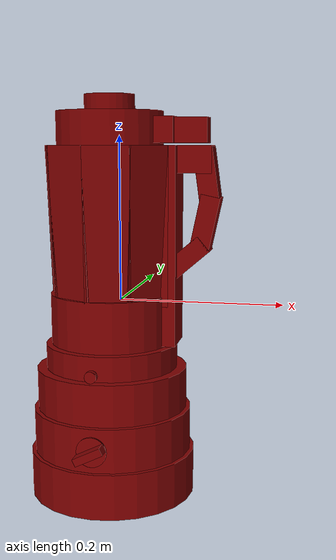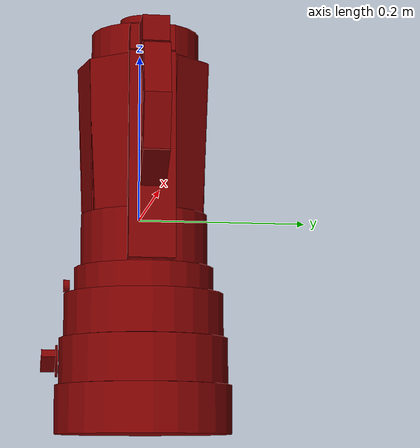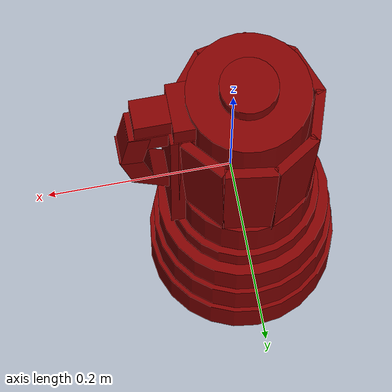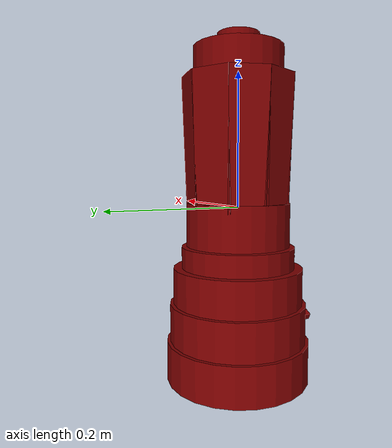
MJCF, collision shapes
<?xml version='1.0' encoding='UTF-8'?>
<mujoco model="model">
  <option timestep="0.002" gravity="0.0 0.0 -9.81"/>
  <compiler angle="radian"/>
  <asset>
    <mesh file="visuals/Blade001.obj" name="Blade001_vis"/>
    <mesh file="visuals/Body001.obj" name="Body001_vis"/>
    <mesh file="visuals/Button001.obj" name="Button001_vis"/>
    <mesh file="visuals/Jug001.obj" name="Jug001_vis"/>
    <mesh file="visuals/Jug001_Clear.obj" name="Jug001_Clear_vis"/>
    <mesh file="visuals/Knob001.obj" name="Knob001_vis"/>
    <mesh file="visuals/Lid001.obj" name="Lid001_vis"/>
    <texture file="visuals/T_BC001.png" name="Body001_material" type="2d"/>
    <material name="Body001_material" rgba="1 1 1 1.0" texture="Body001_material" shininess="0.1" specular="1"/>
    <texture file="visuals/T_BC001.png" name="Button001_material" type="2d"/>
    <material name="Button001_material" rgba="1 1 1 1.0" texture="Button001_material" shininess="0.4472135901451111" specular="0.3103448502657381"/>
    <texture file="visuals/T_BC001.png" name="Jug001_material" type="2d"/>
    <material name="Jug001_material" rgba="1 1 1 1.0" texture="Jug001_material" shininess="0.4472135901451111" specular="0.3103448502657381"/>
    <texture file="visuals/T_BC001.png" name="Blade001_material" type="2d"/>
    <material name="Blade001_material" rgba="1 1 1 1.0" texture="Blade001_material" shininess="0.4472135901451111" specular="0.3103448502657381"/>
    <texture file="visuals/T_BC001.png" name="Jug001_Clear_material" type="2d"/>
    <material name="Jug001_Clear_material" rgba="1 1 1 0.800000011920929" texture="Jug001_Clear_material" shininess="0.4472135901451111" specular="0.3103448502657381"/>
    <texture file="visuals/T_BC001.png" name="Lid001_material" type="2d"/>
    <material name="Lid001_material" rgba="1 1 1 1.0" texture="Lid001_material" shininess="0.4472135901451111" specular="0.3103448502657381"/>
    <texture file="visuals/T_BC001.png" name="Knob001_material" type="2d"/>
    <material name="Knob001_material" rgba="1 1 1 1.0" texture="Knob001_material" shininess="0.4472135901451111" specular="0.3103448502657381"/>
  </asset>
  <default>
    <default class="visual">
      <geom conaffinity="0" contype="0" group="1" type="mesh"/>
    </default>
    <default class="collision">
      <geom group="0" rgba="0.5 0 0 0.5"/>
    </default>
    <default class="spawn">
      <geom group="0" rgba="1 1 1 0.5" contype="0" conaffinity="0"/>
      <site group="0" rgba="1 1 1 0.5"/>
    </default>
    <default class="region">
      <geom group="1" conaffinity="0" contype="0" rgba="0 1 0 0"/>
    </default>
  </default>
  <worldbody>
    <body>
      <body name="object">
        <geom mesh="Body001_vis" type="mesh" solimp="0.998 0.998 0.001" solref="0.001 1" friction="0.95 0.3 0.1" class="visual" material="Body001_material"/>
        <geom class="collision" type="cylinder" pos="-0.01387144 0.00759112 -0.22227697" size="0.10469318181276321 0.028516290709376335" quat="1.0 0.0 0.0 0.0"/>
        <geom class="collision" type="cylinder" pos="-0.01387144 0.00759112 -0.16607638" size="0.10001954436302185 0.02724328637123108" quat="1.0 0.0 0.0 0.0"/>
        <geom class="collision" type="cylinder" pos="-0.01387144 0.00759112 -0.11230748" size="0.09488319605588913 0.02584424987435341" quat="1.0 0.0 0.0 0.0"/>
        <geom class="collision" type="cylinder" pos="-0.01387144 0.00759112 -0.07100878" size="0.08281132578849792 0.015388729982078075" quat="1.0 0.0 0.0 0.0"/>
        <body name="power_button">
          <joint axis="0.0 1.0 0.0" pos="-0.01595779 -0.08291703 -0.07724272" limited="true" name="power_button_joint" range="0.0 0.005" type="slide" damping="1" frictionloss="1" armature=".01" stiffness="0.05"/>
          <geom mesh="Button001_vis" type="mesh" solimp="0.998 0.998 0.001" solref="0.001 1" friction="0.95 0.3 0.1" class="visual" material="Button001_material"/>
          <geom class="collision" type="cylinder" pos="-0.01595779 -0.08434111 -0.07724272" size="0.007227575872093439 0.00347500410862267" quat="0.7071068286895752 0.7071067690849304 0.0 0.0"/>
        </body>
        <body name="pitcher">
          <joint axis="0.0 0.0 1.0" pos="0.01402409 0.00780655 0.06737188" limited="true" name="pitcher_joint" range="0.0 0.1" type="slide" damping="1" frictionloss="1" armature=".01" stiffness="0.05"/>
          <geom mesh="Jug001_vis" type="mesh" solimp="0.998 0.998 0.001" solref="0.001 1" friction="0.95 0.3 0.1" class="visual" material="Jug001_material"/>
          <geom class="collision" type="cylinder" pos="-0.01387144 0.00759112 -0.02343743" size="0.0755901038646698 0.031190989539027214" quat="1.0 0.0 0.0 0.0"/>
          <geom class="collision" type="box" pos="0.06034970 0.00758336 0.06784143" size="0.011583236046135426 0.027263129130005836 0.12090808898210526" quat="1.0 0.0 0.0 0.0"/>
          <geom name="pitcher_handle_0" class="collision" type="box" pos="0.09159835 0.00748012 0.17227817" size="0.021328119561076164 0.015841878950595856 0.01625138334929943" quat="1.0 0.0 0.0 0.0"/>
          <geom name="pitcher_handle_1" class="collision" type="box" pos="0.10630482 0.00791430 0.15362938" size="0.03252037614583969 0.01542231347411871 0.011712320148944855" quat="0.7547217607498169 0.0 0.6560450196266174 0.0"/>
          <geom name="pitcher_handle_2" class="collision" type="box" pos="0.10537517 0.00791430 0.09766448" size="0.03252037614583969 0.01542231161147356 0.011712320148944855" quat="0.6293348073959351 0.0 0.7771342992782593 0.0"/>
          <geom name="pitcher_handle_3" class="collision" type="box" pos="0.08100685 0.00791430 0.05260452" size="0.030332840979099274 0.01542231161147356 0.01171231921762228" quat="0.34662744402885437 0.0 0.93800288438797 0.0"/>
          <geom class="collision" type="box" pos="0.05442135 0.00758336 0.09247573" size="0.008866118267178535 0.027263129130005836 0.0962737575173378" quat="1.0 0.0 0.0 0.0"/>
          <geom class="collision" type="box" pos="0.03891332 -0.03551471 0.09247573" size="0.005154433660209179 0.027263129130005836 0.09614638984203339" quat="0.9419527649879456 0.006479029078036547 0.018207471817731857 -0.33518874645233154"/>
          <geom class="collision" type="box" pos="-0.04634138 -0.05228703 0.09247573" size="0.005154434125870466 0.027263129130005836 0.09614638984203339" quat="0.5137460827827454 0.016579383984208107 0.009930452331900597 -0.8577246069908142"/>
          <geom class="collision" type="box" pos="-0.00107414 -0.05927414 0.09247573" size="0.005154433660209179 0.027263129130005836 0.09614638984203339" quat="0.771568238735199 0.012290717102587223 0.01491402555257082 -0.6358529329299927"/>
          <geom class="collision" type="box" pos="-0.05083842 0.06528205 0.09247573" size="0.005154433660209179 0.027263129130005836 0.09614638984203339" quat="0.4774850010871887 -0.016979556530714035 0.00922954361885786 0.8784273266792297"/>
          <geom class="collision" type="box" pos="-0.00432211 0.07546330 0.09247573" size="0.005154433660209179 0.027263129130005836 0.09614638984203339" quat="0.7537038326263428 -0.01269812323153019 0.014568712562322617 0.6569300293922424"/>
          <geom class="collision" type="box" pos="-0.07905889 0.02830759 0.09247573" size="0.005154433660209179 0.027263129130005836 0.09614638984203339" quat="0.14990121126174927 -0.019107436761260033 0.002897514495998621 0.9885120987892151"/>
          <geom class="collision" type="box" pos="-0.07734878 -0.01746379 0.09247573" size="0.005154433660209179 0.027263129130005836 0.09614638984203339" quat="0.1901738941669464 0.018973061814904213 0.0036759646609425545 -0.9815601706504822"/>
          <geom class="collision" type="box" pos="0.03788485 0.05238785 0.09247573" size="0.005154434125870466 0.027263129130005836 0.09614638984203339" quat="0.9367375373840332 -0.006755633745342493 0.018106667324900627 0.3494986593723297"/>
          <body name="blade">
            <joint axis="0.0 0.0 1.0" pos="-0.01390748 0.00780855 0.02079049" limited="false" name="blade_joint" range="0 360" type="hinge" damping="1" frictionloss="1" armature=".01" stiffness="0.05"/>
            <geom mesh="Blade001_vis" type="mesh" solimp="0.998 0.998 0.001" solref="0.001 1" friction="0.95 0.3 0.1" class="visual" material="Blade001_material"/>
            <geom class="collision" type="box" pos="-0.01365844 0.00634319 0.01533413" size="0.014491913840174675 0.017638348042964935 0.0007777351420372725" quat="1.0 0.0 0.0 0.0"/>
            <geom class="collision" type="box" pos="-0.01384328 0.03973202 0.01533413" size="0.0050698015838861465 0.016161534935235977 0.0007777351420372725" quat="1.0 0.0 0.0 0.0"/>
            <geom class="collision" type="box" pos="-0.01384328 -0.02448858 0.01533413" size="0.0050698015838861465 0.016161534935235977 0.0007777351420372725" quat="1.0 0.0 0.0 0.0"/>
            <geom class="collision" type="box" pos="-0.04553313 0.00760271 0.02032603" size="0.0050698015838861465 0.01778339222073555 0.0007777351420372725" quat="0.6976118087768555 -0.11548939347267151 0.1154894009232521 -0.6976117491722107"/>
            <geom class="collision" type="box" pos="0.01769215 0.00760271 0.02042771" size="0.0050698015838861465 0.01746790111064911 0.0007777351420372725" quat="0.6976118087768555 -0.11548939347267151 -0.1154894009232521 0.6976117491722107"/>
          </body>
          <body name="pitcher_main">
            <geom class="region" name="reg_int" type="cylinder" pos="-0.014116954999999999 0.007731690000000001 0.09428043500000001" size="0.05 0.064287145"/>
            <geom mesh="Jug001_Clear_vis" type="mesh" solimp="0.998 0.998 0.001" solref="0.001 1" friction="0.95 0.3 0.1" class="visual" material="Jug001_Clear_material"/>
            <geom class="collision" type="box" pos="0.05442135 0.00758336 0.09247573" size="0.008866118267178535 0.027263129130005836 0.0962737575173378" quat="1.0 0.0 0.0 0.0"/>
            <geom class="collision" type="box" pos="0.03891332 -0.03551471 0.09247573" size="0.005154433660209179 0.027263129130005836 0.09614638984203339" quat="0.9419527649879456 0.006479029078036547 0.018207471817731857 -0.33518874645233154"/>
            <geom class="collision" type="box" pos="-0.04634138 -0.05228703 0.09247573" size="0.005154434125870466 0.027263129130005836 0.09614638984203339" quat="0.5137460827827454 0.016579383984208107 0.009930452331900597 -0.8577246069908142"/>
            <geom class="collision" type="box" pos="-0.00107414 -0.05927414 0.09247573" size="0.005154433660209179 0.027263129130005836 0.09614638984203339" quat="0.771568238735199 0.012290717102587223 0.01491402555257082 -0.6358529329299927"/>
            <geom class="collision" type="box" pos="-0.05083842 0.06528205 0.09247573" size="0.005154433660209179 0.027263129130005836 0.09614638984203339" quat="0.4774850010871887 -0.016979556530714035 0.00922954361885786 0.8784273266792297"/>
            <geom class="collision" type="box" pos="-0.00432211 0.07546330 0.09247573" size="0.005154433660209179 0.027263129130005836 0.09614638984203339" quat="0.7537038326263428 -0.01269812323153019 0.014568712562322617 0.6569300293922424"/>
            <geom class="collision" type="box" pos="-0.07905889 0.02830759 0.09247573" size="0.005154433660209179 0.027263129130005836 0.09614638984203339" quat="0.14990121126174927 -0.019107436761260033 0.002897514495998621 0.9885120987892151"/>
            <geom class="collision" type="box" pos="-0.07734878 -0.01746379 0.09247573" size="0.005154433660209179 0.027263129130005836 0.09614638984203339" quat="0.1901738941669464 0.018973061814904213 0.0036759646609425545 -0.9815601706504822"/>
            <geom class="collision" type="box" pos="0.03788485 0.05238785 0.09247573" size="0.005154434125870466 0.027263129130005836 0.09614638984203339" quat="0.9367375373840332 -0.006755633745342493 0.018106667324900627 0.3494986593723297"/>
          </body>
          <body name="lid">
            <joint axis="0.0 0.0 1.0" pos="0.00646350 0.00780470 0.20770767" limited="true" name="lid_joint" range="0.0 0.1" type="slide" damping="1" frictionloss="1" armature=".01" stiffness="0.05"/>
            <geom mesh="Lid001_vis" type="mesh" solimp="0.998 0.998 0.001" solref="0.001 1" friction="0.95 0.3 0.1" class="visual" material="Lid001_material"/>
            <geom class="collision" type="cylinder" pos="-0.01365060 0.00787059 0.23791380" size="0.03057319112122059 0.010535256937146187" quat="1.0 0.0 0.0 0.0"/>
            <geom class="collision" type="cylinder" pos="-0.01365060 0.00787059 0.19385339" size="0.06502468883991241 0.03509926795959473" quat="1.0 0.0 0.0 0.0"/>
            <geom class="collision" type="box" pos="0.05663588 0.00801055 0.20659944" size="0.01173425279557705 0.026565389707684517 0.015394516289234161" quat="1.0 0.0 0.0 0.0"/>
            <geom class="collision" type="box" pos="0.08630183 0.00749852 0.20609520" size="0.020895959809422493 0.01577948033809662 0.01489027589559555" quat="1.0 0.0 0.0 0.0"/>
          </body>
        </body>
        <body name="knob_speed">
          <joint axis="0.0 1.0 0.0" pos="-0.01392435 -0.09473100 -0.16594788" limited="true" name="knob_speed_joint" range="0.0 4.014257279586958" type="hinge" damping="0.05" armature="0.001"/>
          <geom mesh="Knob001_vis" type="mesh" solimp="0.998 0.998 0.001" solref="0.001 1" friction="0.95 0.3 0.1" class="visual" material="Knob001_material"/>
          <geom class="collision" type="cylinder" pos="-0.01396523 -0.09503022 -0.16604793" size="0.018516525626182556 0.0010534262983128428" quat="0.7071068286895752 0.7071067690849304 0.0 0.0"/>
          <geom class="collision" name="knob_speed_main" type="box" pos="-0.01392435 -0.10493317 -0.16594788" size="0.01824144460260868 0.00815507210791111 0.004754546098411083" quat="0.9741969108581543 1.0069801903875796e-15 -0.2256997674703598 7.725376782730109e-09"/>
        </body>
        <geom class="region" name="reg_main" type="box" pos="-0.013871435000000001 0.0075911150000000024 0.001150994999999988" size="0.106338895 0.10634711499999999 0.252751275"/>
      </body>
    </body>
  </worldbody>
  <actuator>
    <motor name="power_button_joint_actuator" joint="power_button_joint" gear="0.1"/>
    <motor name="pitcher_joint_actuator" joint="pitcher_joint" gear="200"/>
    <motor name="knob_speed_joint_actuator" joint="knob_speed_joint" gear="10"/>
    <motor name="blade_joint_actuator" joint="blade_joint" gear="10"/>
    <motor name="lid_joint_actuator" joint="lid_joint" gear="50"/>
  </actuator>
</mujoco>
